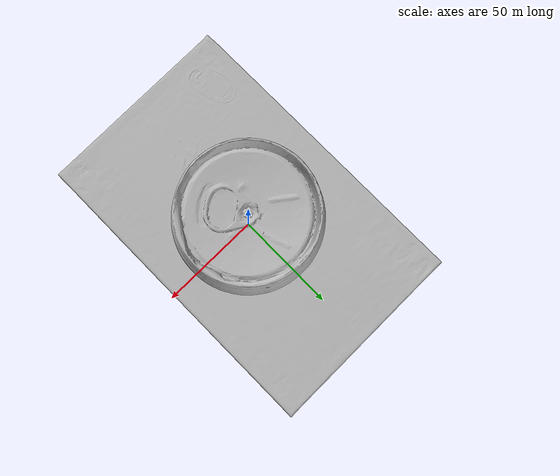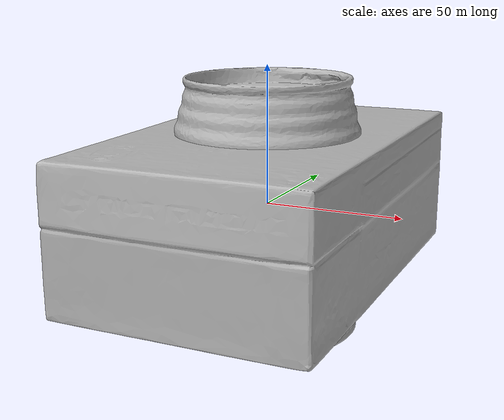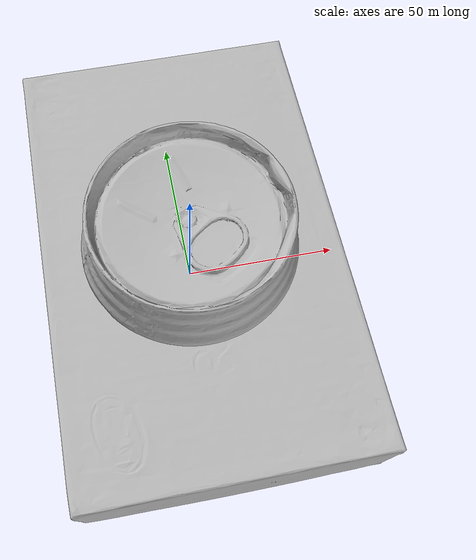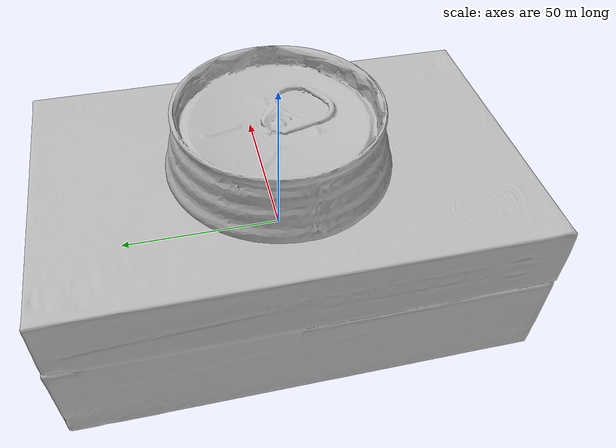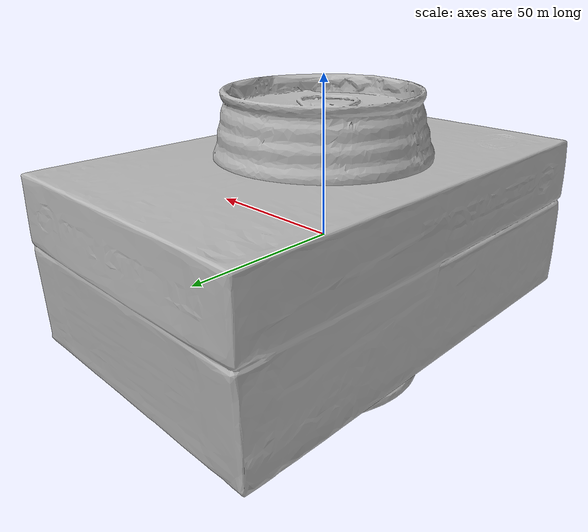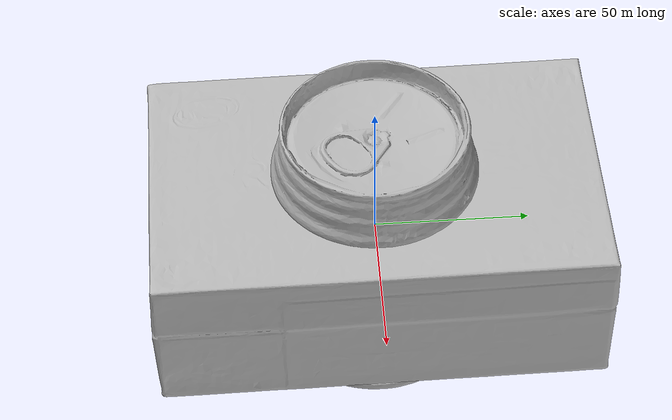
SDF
<?xml version="1.0" ?>
<sdf version="1.4">
  <world name="default">
    <light name="light1" type="point">
      <pose>0 0 1 0 0 0</pose>
      <diffuse>3 3 3 1</diffuse>
      <specular>3 3 3 1</specular>
    </light>
    <light name="light2" type="point">
      <pose>0 0.5 2 0 0 0</pose>
      <diffuse>1 1 1 1</diffuse>
      <specular>1 1 1 1</specular>
    </light>
    <light name="light3" type="point">
      <pose>0 0.5 2 0 0 0</pose>
      <diffuse>3 3 3 1</diffuse>
      <specular>3 3 3 1</specular>
    </light>
    <scene>
      <ambient>0.7 0.7 0.7</ambient>
    </scene>
    <model name="box1">
      <link name="link_box1">
        <collision name="default">
          <geometry>
            <mesh>
              <uri>model://realsense_box/collision_meshes/collision.obj</uri>
              <scale>1.0 1.0 1.0</scale>
            </mesh>
          </geometry>
          <surface>
            <friction>
              <ode>
                <mu>0.5</mu>
                <mu2>0.5</mu2>
              </ode>
            </friction>
            <contact>
              <ode>
                <max_vel>0</max_vel>
                <min_depth>0.0001</min_depth>
                <kp>1e8</kp>
              </ode>
            </contact>
          </surface>
        </collision>
        <visual name="default">
          <geometry>
            <mesh>
              <uri>model://realsense_box/visual_meshes/visual.dae</uri>
              <scale>1.0 1.0 1.0</scale>
            </mesh>
          </geometry>
        </visual>
        <inertial>
          <mass>0.5864310264587402</mass>
          <pose>4.0744838770478964e-05 8.587492629885674e-05 -2.4153792764991522e-05 -0.00012602841398420584 -0.00635893997803049 0.005012323893530406</pose>
          <inertia>
            <ixx>0.00055784633</ixx>
            <iyy>0.0011643406</iyy>
            <izz>0.0014403972</izz>
            <ixy>0</ixy>
            <ixz>0</ixz>
            <iyz>0</iyz>
          </inertia>
        </inertial>
      </link>
      <pose>0.25112730264663696 8.395725308218971e-05 0.027316011488437653 -1.3083614332594206e-08 2.4486579510127036e-08 1.565007259953589</pose>
    </model>
    <model name="box2">
      <link name="link_box2">
        <collision name="default">
          <geometry>
            <mesh>
              <uri>model://wooden_puzzle1/collision_meshes/collision.obj</uri>
              <scale>1.0 1.0 1.0</scale>
            </mesh>
          </geometry>
          <surface>
            <friction>
              <ode>
                <mu>0.5</mu>
                <mu2>0.5</mu2>
              </ode>
            </friction>
            <contact>
              <ode>
                <max_vel>0</max_vel>
                <min_depth>0.0001</min_depth>
                <kp>1e8</kp>
              </ode>
            </contact>
          </surface>
        </collision>
        <visual name="default">
          <geometry>
            <mesh>
              <uri>model://wooden_puzzle1/visual_meshes/visual.dae</uri>
              <scale>1.0 1.0 1.0</scale>
            </mesh>
          </geometry>
        </visual>
        <inertial>
          <mass>0.029293930158019066</mass>
          <pose>-0.00017350679263472557 7.972260209498927e-05 -9.191554272547364e-05 -0.07784356807478612 -0.26361316070226715 -0.552870069934309</pose>
          <inertia>
            <ixx>5.5269634e-06</ixx>
            <iyy>5.4205675e-06</iyy>
            <izz>5.4852344e-06</izz>
            <ixy>0</ixy>
            <ixz>0</ixz>
            <iyz>0</iyz>
          </inertia>
        </inertial>
      </link>
      <pose>0.14049357175827026 -0.2833390533924103 0.016802016645669937 0.010511596771800736 -0.009454302945821865 0.8166109011497064</pose>
    </model>
    <model name="box3">
      <link name="link_box3">
        <collision name="default">
          <geometry>
            <mesh>
              <uri>model://wooden_puzzle2/collision_meshes/collision.obj</uri>
              <scale>1.0 1.0 1.0</scale>
            </mesh>
          </geometry>
          <surface>
            <friction>
              <ode>
                <mu>0.5</mu>
                <mu2>0.5</mu2>
              </ode>
            </friction>
            <contact>
              <ode>
                <max_vel>0</max_vel>
                <min_depth>0.0001</min_depth>
                <kp>1e8</kp>
              </ode>
            </contact>
          </surface>
        </collision>
        <visual name="default">
          <geometry>
            <mesh>
              <uri>model://wooden_puzzle2/visual_meshes/visual.dae</uri>
              <scale>1.0 1.0 1.0</scale>
            </mesh>
          </geometry>
        </visual>
        <inertial>
          <mass>0.046210821717977524</mass>
          <pose>2.7402538762544282e-05 4.9976635636994615e-05 6.587122334167361e-05 -0.19202726218652877 0.6112834530151037 -0.6338736448019666</pose>
          <inertia>
            <ixx>8.590097e-06</ixx>
            <iyy>8.826809e-06</iyy>
            <izz>8.7012395e-06</izz>
            <ixy>0</ixy>
            <ixz>0</ixz>
            <iyz>0</iyz>
          </inertia>
        </inertial>
      </link>
      <pose>-0.03897944092750549 -0.2342400699853897 0.01691773720085621 0.020848488755449056 0.0007210137270297922 -1.4576484670947127</pose>
    </model>
    <model name="can1">
      <link name="link_can1">
        <collision name="default">
          <geometry>
            <mesh>
              <uri>model://pepsi/collision_meshes/collision.obj</uri>
              <scale>1.0 1.0 1.0</scale>
            </mesh>
          </geometry>
          <surface>
            <friction>
              <ode>
                <mu>0.5</mu>
                <mu2>0.5</mu2>
              </ode>
            </friction>
            <contact>
              <ode>
                <max_vel>0</max_vel>
                <min_depth>0.0001</min_depth>
                <kp>1e8</kp>
              </ode>
            </contact>
          </surface>
        </collision>
        <visual name="default">
          <geometry>
            <mesh>
              <uri>model://pepsi/visual_meshes/visual.dae</uri>
              <scale>1.0 1.0 1.0</scale>
            </mesh>
          </geometry>
        </visual>
        <inertial>
          <mass>0.38708412647247314</mass>
          <pose>-7.5590331107378e-05 2.9931279641459696e-05 -0.0003384356386959553 -0.0010677624110939459 -0.0021735778616849013 0.5673701652335379</pose>
          <inertia>
            <ixx>0.00077114574</ixx>
            <iyy>0.0007705839</iyy>
            <izz>0.00016412749</izz>
            <ixy>0</ixy>
            <ixz>0</ixz>
            <iyz>0</iyz>
          </inertia>
        </inertial>
      </link>
      <pose>0.27048197388648987 0.2776261270046234 0.0744963213801384 -1.89061595560798e-05 2.029183026546866e-06 -0.6765059567047912</pose>
    </model>
    <model name="can2">
      <link name="link_can2">
        <collision name="default">
          <geometry>
            <mesh>
              <uri>model://redbull/collision_meshes/collision.obj</uri>
              <scale>1.0 1.0 1.0</scale>
            </mesh>
          </geometry>
          <surface>
            <friction>
              <ode>
                <mu>0.5</mu>
                <mu2>0.5</mu2>
              </ode>
            </friction>
            <contact>
              <ode>
                <max_vel>0</max_vel>
                <min_depth>0.0001</min_depth>
                <kp>1e8</kp>
              </ode>
            </contact>
          </surface>
        </collision>
        <visual name="default">
          <geometry>
            <mesh>
              <uri>model://redbull/visual_meshes/visual.dae</uri>
              <scale>1.0 1.0 1.0</scale>
            </mesh>
          </geometry>
        </visual>
        <inertial>
          <mass>0.22841571271419525</mass>
          <pose>-2.2126563635538332e-05 -0.00012659550702665 -0.0006860988214612007 0.001137008533125708 -0.010800935482360328 0.5858832407094048</pose>
          <inertia>
            <ixx>0.00021475992</ixx>
            <iyy>0.00021494119</iyy>
            <izz>0.00012744407</izz>
            <ixy>0</ixy>
            <ixz>0</ixz>
            <iyz>0</iyz>
          </inertia>
        </inertial>
      </link>
      <pose>0.13955187797546387 0.1785818189382553 0.04638564959168434 -0.01048937953956418 0.007261178832440066 1.0199669139741014</pose>
    </model>
    <physics type="ode">
      <max_contacts>50</max_contacts>
      <ode>
        <solver>
          <type>quick</type>
          <iters>75</iters>
        </solver>
        <constraints>
          <contact_max_correcting_vel>0</contact_max_correcting_vel>
          <contact_surface_layer>0</contact_surface_layer>
        </constraints>
      </ode>
    </physics>
  </world>
</sdf>
